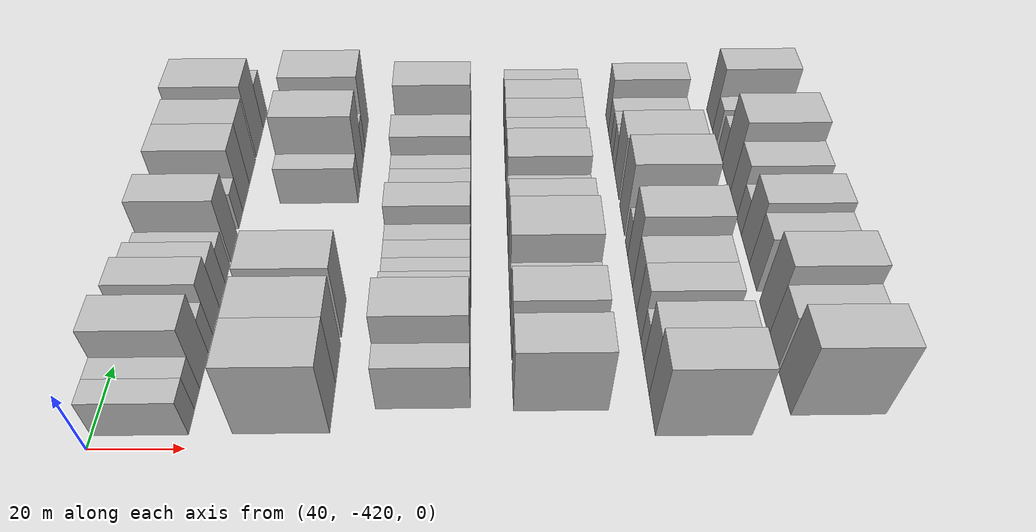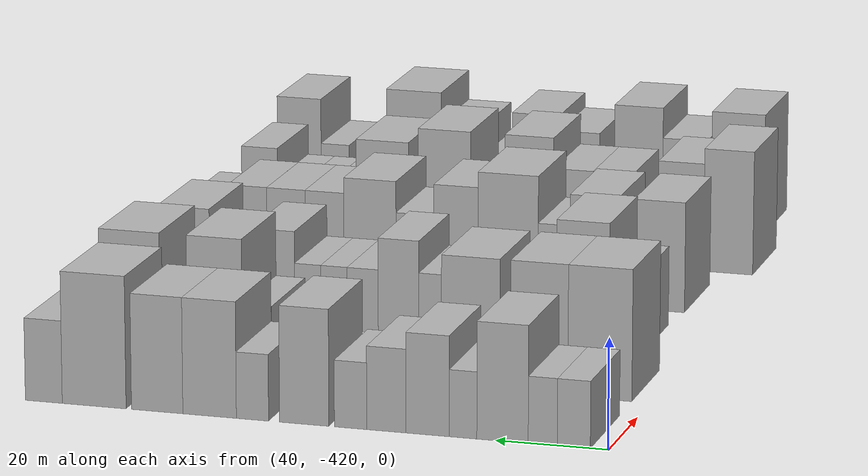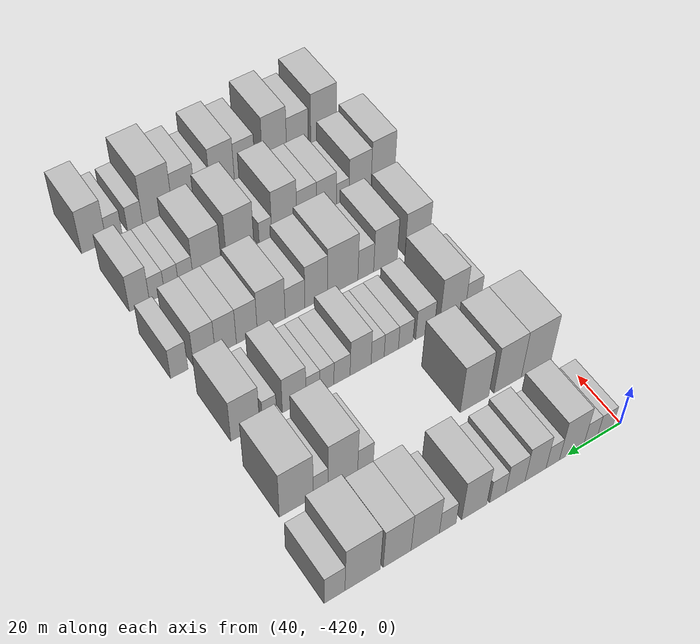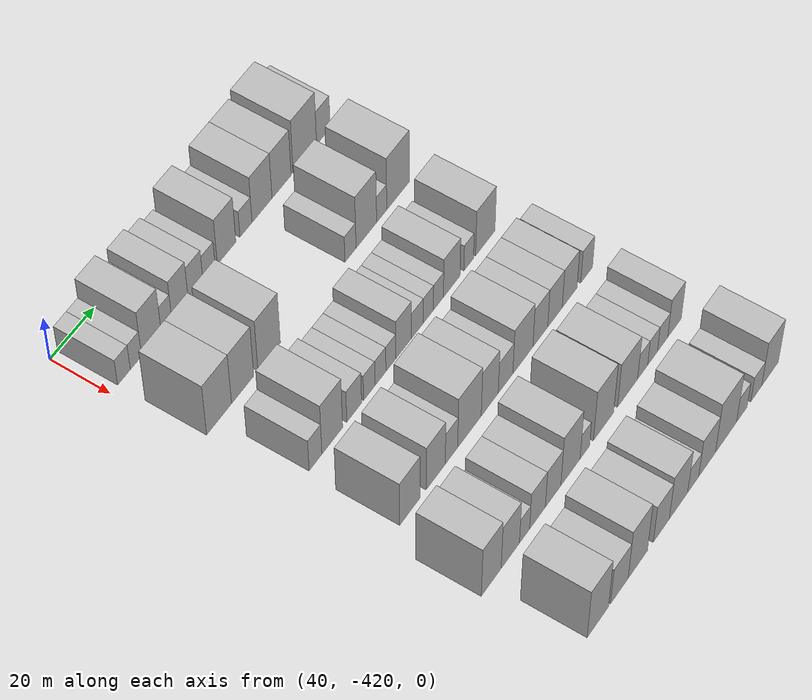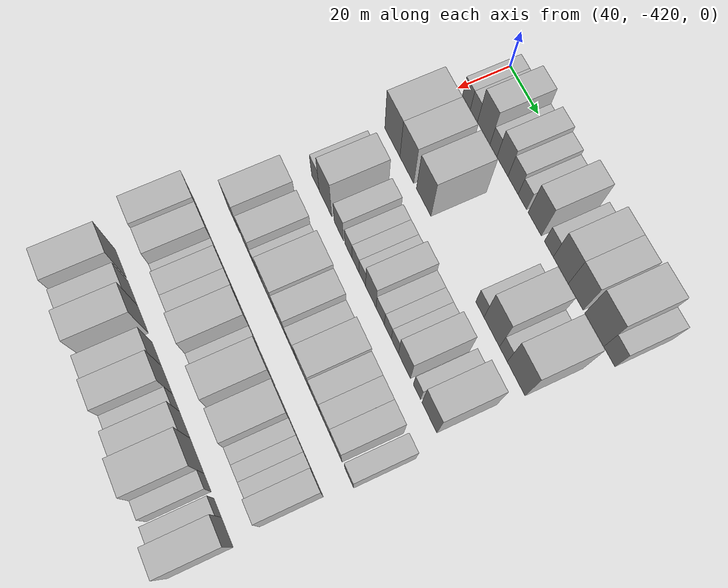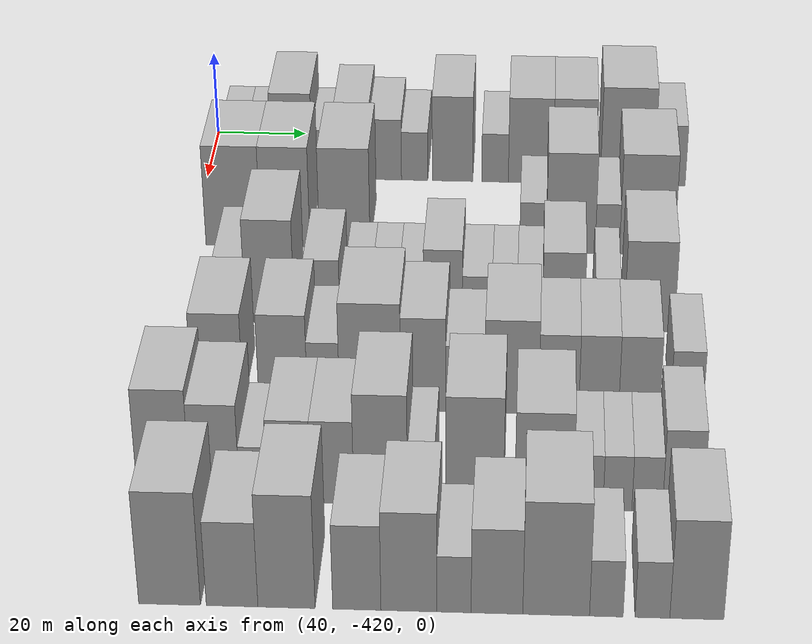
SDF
<sdf version="1.6">
 <world name="default">
  <model name="building_11">
   <static>1</static>
   <pose>50.0000 -413.8819 0 0.000000 0.000000 0.000000</pose>
   <link name="link">
    <pose>0 0 6.00 0 0 0</pose>
    <collision name="collision"><geometry><box><size>20.0000 5.8278 12.0000</size></box></geometry></collision>
    <visual name="visual">
     <cast_shadows>0</cast_shadows>
     <geometry><box><size>20.0000 5.8278 12.0000</size></box></geometry>
     <material>
      <script>
       <uri>model://HANNAS_wall/materials/scripts</uri>
       <uri>model://HANNAS_wall/materials/textures</uri>
       <name>vrc/HANNAS_wall</name>
      </script>
     </material>
    </visual>
   </link>
  </model>
  <model name="building_12">
   <static>1</static>
   <pose>50.0000 -408.3892 0 0.000000 0.000000 0.000000</pose>
   <link name="link">
    <pose>0 0 6.00 0 0 0</pose>
    <collision name="collision"><geometry><box><size>20.0000 5.1576 12.0000</size></box></geometry></collision>
    <visual name="visual">
     <cast_shadows>0</cast_shadows>
     <geometry><box><size>20.0000 5.1576 12.0000</size></box></geometry>
     <material>
      <script>
       <uri>model://HANNAS_wall/materials/scripts</uri>
       <uri>model://HANNAS_wall/materials/textures</uri>
       <name>vrc/HANNAS_wall</name>
      </script>
     </material>
    </visual>
   </link>
  </model>
  <model name="building_13">
   <static>1</static>
   <pose>50.0000 -401.2446 0 0.000000 0.000000 0.000000</pose>
   <link name="link">
    <pose>0 0 10.50 0 0 0</pose>
    <collision name="collision"><geometry><box><size>20.0000 9.1314 21.0000</size></box></geometry></collision>
    <visual name="visual">
     <cast_shadows>0</cast_shadows>
     <geometry><box><size>20.0000 9.1314 21.0000</size></box></geometry>
     <material>
      <script>
       <uri>model://HANNAS_wall/materials/scripts</uri>
       <uri>model://HANNAS_wall/materials/textures</uri>
       <name>vrc/HANNAS_wall</name>
      </script>
     </material>
    </visual>
   </link>
  </model>
  <model name="building_14">
   <static>1</static>
   <pose>50.0000 -394.2057 0 0.000000 0.000000 0.000000</pose>
   <link name="link">
    <pose>0 0 6.00 0 0 0</pose>
    <collision name="collision"><geometry><box><size>20.0000 4.9464 12.0000</size></box></geometry></collision>
    <visual name="visual">
     <cast_shadows>0</cast_shadows>
     <geometry><box><size>20.0000 4.9464 12.0000</size></box></geometry>
     <material>
      <script>
       <uri>model://HANNAS_wall/materials/scripts</uri>
       <uri>model://HANNAS_wall/materials/textures</uri>
       <name>vrc/HANNAS_wall</name>
      </script>
     </material>
    </visual>
   </link>
  </model>
  <model name="building_15">
   <static>1</static>
   <pose>50.0000 -387.8550 0 0.000000 0.000000 0.000000</pose>
   <link name="link">
    <pose>0 0 9.00 0 0 0</pose>
    <collision name="collision"><geometry><box><size>20.0000 7.7550 18.0000</size></box></geometry></collision>
    <visual name="visual">
     <cast_shadows>0</cast_shadows>
     <geometry><box><size>20.0000 7.7550 18.0000</size></box></geometry>
     <material>
      <script>
       <uri>model://HANNAS_wall/materials/scripts</uri>
       <uri>model://HANNAS_wall/materials/textures</uri>
       <name>vrc/HANNAS_wall</name>
      </script>
     </material>
    </visual>
   </link>
  </model>
  <model name="building_16">
   <static>1</static>
   <pose>50.0000 -380.4570 0 0.000000 0.000000 0.000000</pose>
   <link name="link">
    <pose>0 0 7.50 0 0 0</pose>
    <collision name="collision"><geometry><box><size>20.0000 7.0410 15.0000</size></box></geometry></collision>
    <visual name="visual">
     <cast_shadows>0</cast_shadows>
     <geometry><box><size>20.0000 7.0410 15.0000</size></box></geometry>
     <material>
      <script>
       <uri>model://HANNAS_wall/materials/scripts</uri>
       <uri>model://HANNAS_wall/materials/textures</uri>
       <name>vrc/HANNAS_wall</name>
      </script>
     </material>
    </visual>
   </link>
  </model>
  <model name="building_17">
   <static>1</static>
   <pose>50.0000 -374.0236 0 0.000000 0.000000 0.000000</pose>
   <link name="link">
    <pose>0 0 6.00 0 0 0</pose>
    <collision name="collision"><geometry><box><size>20.0000 5.8259 12.0000</size></box></geometry></collision>
    <visual name="visual">
     <cast_shadows>0</cast_shadows>
     <geometry><box><size>20.0000 5.8259 12.0000</size></box></geometry>
     <material>
      <script>
       <uri>model://HANNAS_wall/materials/scripts</uri>
       <uri>model://HANNAS_wall/materials/textures</uri>
       <name>vrc/HANNAS_wall</name>
      </script>
     </material>
    </visual>
   </link>
  </model>
  <model name="building_18">
   <static>1</static>
   <pose>50.0000 -365.6434 0 0.000000 0.000000 0.000000</pose>
   <link name="link">
    <pose>0 0 10.50 0 0 0</pose>
    <collision name="collision"><geometry><box><size>20.0000 8.9345 21.0000</size></box></geometry></collision>
    <visual name="visual">
     <cast_shadows>0</cast_shadows>
     <geometry><box><size>20.0000 8.9345 21.0000</size></box></geometry>
     <material>
      <script>
       <uri>model://HANNAS_wall/materials/scripts</uri>
       <uri>model://HANNAS_wall/materials/textures</uri>
       <name>vrc/HANNAS_wall</name>
      </script>
     </material>
    </visual>
   </link>
  </model>
  <model name="building_19">
   <static>1</static>
   <pose>50.0000 -356.2372 0 0.000000 0.000000 0.000000</pose>
   <link name="link">
    <pose>0 0 6.00 0 0 0</pose>
    <collision name="collision"><geometry><box><size>20.0000 5.8778 12.0000</size></box></geometry></collision>
    <visual name="visual">
     <cast_shadows>0</cast_shadows>
     <geometry><box><size>20.0000 5.8778 12.0000</size></box></geometry>
     <material>
      <script>
       <uri>model://HANNAS_wall/materials/scripts</uri>
       <uri>model://HANNAS_wall/materials/textures</uri>
       <name>vrc/HANNAS_wall</name>
      </script>
     </material>
    </visual>
   </link>
  </model>
  <model name="building_20">
   <static>1</static>
   <pose>50.0000 -348.4017 0 0.000000 0.000000 0.000000</pose>
   <link name="link">
    <pose>0 0 10.50 0 0 0</pose>
    <collision name="collision"><geometry><box><size>20.0000 9.7932 21.0000</size></box></geometry></collision>
    <visual name="visual">
     <cast_shadows>0</cast_shadows>
     <geometry><box><size>20.0000 9.7932 21.0000</size></box></geometry>
     <material>
      <script>
       <uri>model://HANNAS_wall/materials/scripts</uri>
       <uri>model://HANNAS_wall/materials/textures</uri>
       <name>vrc/HANNAS_wall</name>
      </script>
     </material>
    </visual>
   </link>
  </model>
  <model name="building_21">
   <static>1</static>
   <pose>50.0000 -338.7767 0 0.000000 0.000000 0.000000</pose>
   <link name="link">
    <pose>0 0 10.50 0 0 0</pose>
    <collision name="collision"><geometry><box><size>20.0000 9.4569 21.0000</size></box></geometry></collision>
    <visual name="visual">
     <cast_shadows>0</cast_shadows>
     <geometry><box><size>20.0000 9.4569 21.0000</size></box></geometry>
     <material>
      <script>
       <uri>model://HANNAS_wall/materials/scripts</uri>
       <uri>model://HANNAS_wall/materials/textures</uri>
       <name>vrc/HANNAS_wall</name>
      </script>
     </material>
    </visual>
   </link>
  </model>
  <model name="building_22">
   <static>1</static>
   <pose>50.0000 -327.1377 0 0.000000 0.000000 0.000000</pose>
   <link name="link">
    <pose>0 0 12.00 0 0 0</pose>
    <collision name="collision"><geometry><box><size>20.0000 11.8209 24.0000</size></box></geometry></collision>
    <visual name="visual">
     <cast_shadows>0</cast_shadows>
     <geometry><box><size>20.0000 11.8209 24.0000</size></box></geometry>
     <material>
      <script>
       <uri>model://HANNAS_wall/materials/scripts</uri>
       <uri>model://HANNAS_wall/materials/textures</uri>
       <name>vrc/HANNAS_wall</name>
      </script>
     </material>
    </visual>
   </link>
  </model>
  <model name="building_23">
   <static>1</static>
   <pose>50.0000 -317.7968 0 0.000000 0.000000 0.000000</pose>
   <link name="link">
    <pose>0 0 7.50 0 0 0</pose>
    <collision name="collision"><geometry><box><size>20.0000 6.8609 15.0000</size></box></geometry></collision>
    <visual name="visual">
     <cast_shadows>0</cast_shadows>
     <geometry><box><size>20.0000 6.8609 15.0000</size></box></geometry>
     <material>
      <script>
       <uri>model://HANNAS_wall/materials/scripts</uri>
       <uri>model://HANNAS_wall/materials/textures</uri>
       <name>vrc/HANNAS_wall</name>
      </script>
     </material>
    </visual>
   </link>
  </model>
  <model name="building_123">
   <static>1</static>
   <pose>79.0000 -410.8930 0 0.000000 0.000000 0.000000</pose>
   <link name="link">
    <pose>0 0 12.00 0 0 0</pose>
    <collision name="collision"><geometry><box><size>20.0000 11.6201 24.0000</size></box></geometry></collision>
    <visual name="visual">
     <cast_shadows>0</cast_shadows>
     <geometry><box><size>20.0000 11.6201 24.0000</size></box></geometry>
     <material>
      <script>
       <uri>model://HANNAS_wall/materials/scripts</uri>
       <uri>model://HANNAS_wall/materials/textures</uri>
       <name>vrc/HANNAS_wall</name>
      </script>
     </material>
    </visual>
   </link>
  </model>
  <model name="building_124">
   <static>1</static>
   <pose>79.0000 -399.8671 0 0.000000 0.000000 0.000000</pose>
   <link name="link">
    <pose>0 0 12.00 0 0 0</pose>
    <collision name="collision"><geometry><box><size>20.0000 10.4316 24.0000</size></box></geometry></collision>
    <visual name="visual">
     <cast_shadows>0</cast_shadows>
     <geometry><box><size>20.0000 10.4316 24.0000</size></box></geometry>
     <material>
      <script>
       <uri>model://HANNAS_wall/materials/scripts</uri>
       <uri>model://HANNAS_wall/materials/textures</uri>
       <name>vrc/HANNAS_wall</name>
      </script>
     </material>
    </visual>
   </link>
  </model>
  <model name="building_125">
   <static>1</static>
   <pose>79.0000 -387.3000 0 0.000000 0.000000 0.000000</pose>
   <link name="link">
    <pose>0 0 12.00 0 0 0</pose>
    <collision name="collision"><geometry><box><size>20.0000 10.7027 24.0000</size></box></geometry></collision>
    <visual name="visual">
     <cast_shadows>0</cast_shadows>
     <geometry><box><size>20.0000 10.7027 24.0000</size></box></geometry>
     <material>
      <script>
       <uri>model://HANNAS_wall/materials/scripts</uri>
       <uri>model://HANNAS_wall/materials/textures</uri>
       <name>vrc/HANNAS_wall</name>
      </script>
     </material>
    </visual>
   </link>
  </model>
  <model name="building_126">
   <static>1</static>
   <pose>79.0000 -347.6534 0 0.000000 0.000000 0.000000</pose>
   <link name="link">
    <pose>0 0 6.00 0 0 0</pose>
    <collision name="collision"><geometry><box><size>20.0000 5.5302 12.0000</size></box></geometry></collision>
    <visual name="visual">
     <cast_shadows>0</cast_shadows>
     <geometry><box><size>20.0000 5.5302 12.0000</size></box></geometry>
     <material>
      <script>
       <uri>model://HANNAS_wall/materials/scripts</uri>
       <uri>model://HANNAS_wall/materials/textures</uri>
       <name>vrc/HANNAS_wall</name>
      </script>
     </material>
    </visual>
   </link>
  </model>
  <model name="building_127">
   <static>1</static>
   <pose>79.0000 -339.7252 0 0.000000 0.000000 0.000000</pose>
   <link name="link">
    <pose>0 0 12.00 0 0 0</pose>
    <collision name="collision"><geometry><box><size>20.0000 10.3264 24.0000</size></box></geometry></collision>
    <visual name="visual">
     <cast_shadows>0</cast_shadows>
     <geometry><box><size>20.0000 10.3264 24.0000</size></box></geometry>
     <material>
      <script>
       <uri>model://HANNAS_wall/materials/scripts</uri>
       <uri>model://HANNAS_wall/materials/textures</uri>
       <name>vrc/HANNAS_wall</name>
      </script>
     </material>
    </visual>
   </link>
  </model>
  <model name="building_128">
   <static>1</static>
   <pose>79.0000 -332.0034 0 0.000000 0.000000 0.000000</pose>
   <link name="link">
    <pose>0 0 6.00 0 0 0</pose>
    <collision name="collision"><geometry><box><size>20.0000 5.1171 12.0000</size></box></geometry></collision>
    <visual name="visual">
     <cast_shadows>0</cast_shadows>
     <geometry><box><size>20.0000 5.1171 12.0000</size></box></geometry>
     <material>
      <script>
       <uri>model://HANNAS_wall/materials/scripts</uri>
       <uri>model://HANNAS_wall/materials/textures</uri>
       <name>vrc/HANNAS_wall</name>
      </script>
     </material>
    </visual>
   </link>
  </model>
  <model name="building_129">
   <static>1</static>
   <pose>79.0000 -323.7012 0 0.000000 0.000000 0.000000</pose>
   <link name="link">
    <pose>0 0 12.00 0 0 0</pose>
    <collision name="collision"><geometry><box><size>20.0000 11.4872 24.0000</size></box></geometry></collision>
    <visual name="visual">
     <cast_shadows>0</cast_shadows>
     <geometry><box><size>20.0000 11.4872 24.0000</size></box></geometry>
     <material>
      <script>
       <uri>model://HANNAS_wall/materials/scripts</uri>
       <uri>model://HANNAS_wall/materials/textures</uri>
       <name>vrc/HANNAS_wall</name>
      </script>
     </material>
    </visual>
   </link>
  </model>
  <model name="building_234">
   <static>1</static>
   <pose>108.0000 -408.1063 0 0.000000 0.000000 0.000000</pose>
   <link name="link">
    <pose>0 0 7.50 0 0 0</pose>
    <collision name="collision"><geometry><box><size>20.0000 6.0489 15.0000</size></box></geometry></collision>
    <visual name="visual">
     <cast_shadows>0</cast_shadows>
     <geometry><box><size>20.0000 6.0489 15.0000</size></box></geometry>
     <material>
      <script>
       <uri>model://HANNAS_wall/materials/scripts</uri>
       <uri>model://HANNAS_wall/materials/textures</uri>
       <name>vrc/HANNAS_wall</name>
      </script>
     </material>
    </visual>
   </link>
  </model>
  <model name="building_235">
   <static>1</static>
   <pose>108.0000 -400.1371 0 0.000000 0.000000 0.000000</pose>
   <link name="link">
    <pose>0 0 12.00 0 0 0</pose>
    <collision name="collision"><geometry><box><size>20.0000 9.8895 24.0000</size></box></geometry></collision>
    <visual name="visual">
     <cast_shadows>0</cast_shadows>
     <geometry><box><size>20.0000 9.8895 24.0000</size></box></geometry>
     <material>
      <script>
       <uri>model://HANNAS_wall/materials/scripts</uri>
       <uri>model://HANNAS_wall/materials/textures</uri>
       <name>vrc/HANNAS_wall</name>
      </script>
     </material>
    </visual>
   </link>
  </model>
  <model name="building_236">
   <static>1</static>
   <pose>108.0000 -389.6250 0 0.000000 0.000000 0.000000</pose>
   <link name="link">
    <pose>0 0 7.50 0 0 0</pose>
    <collision name="collision"><geometry><box><size>20.0000 7.1347 15.0000</size></box></geometry></collision>
    <visual name="visual">
     <cast_shadows>0</cast_shadows>
     <geometry><box><size>20.0000 7.1347 15.0000</size></box></geometry>
     <material>
      <script>
       <uri>model://HANNAS_wall/materials/scripts</uri>
       <uri>model://HANNAS_wall/materials/textures</uri>
       <name>vrc/HANNAS_wall</name>
      </script>
     </material>
    </visual>
   </link>
  </model>
  <model name="building_237">
   <static>1</static>
   <pose>108.0000 -382.2885 0 0.000000 0.000000 0.000000</pose>
   <link name="link">
    <pose>0 0 6.00 0 0 0</pose>
    <collision name="collision"><geometry><box><size>20.0000 5.5382 12.0000</size></box></geometry></collision>
    <visual name="visual">
     <cast_shadows>0</cast_shadows>
     <geometry><box><size>20.0000 5.5382 12.0000</size></box></geometry>
     <material>
      <script>
       <uri>model://HANNAS_wall/materials/scripts</uri>
       <uri>model://HANNAS_wall/materials/textures</uri>
       <name>vrc/HANNAS_wall</name>
      </script>
     </material>
    </visual>
   </link>
  </model>
  <model name="building_238">
   <static>1</static>
   <pose>108.0000 -376.8406 0 0.000000 0.000000 0.000000</pose>
   <link name="link">
    <pose>0 0 6.00 0 0 0</pose>
    <collision name="collision"><geometry><box><size>20.0000 5.3577 12.0000</size></box></geometry></collision>
    <visual name="visual">
     <cast_shadows>0</cast_shadows>
     <geometry><box><size>20.0000 5.3577 12.0000</size></box></geometry>
     <material>
      <script>
       <uri>model://HANNAS_wall/materials/scripts</uri>
       <uri>model://HANNAS_wall/materials/textures</uri>
       <name>vrc/HANNAS_wall</name>
      </script>
     </material>
    </visual>
   </link>
  </model>
  <model name="building_239">
   <static>1</static>
   <pose>108.0000 -371.7180 0 0.000000 0.000000 0.000000</pose>
   <link name="link">
    <pose>0 0 6.00 0 0 0</pose>
    <collision name="collision"><geometry><box><size>20.0000 4.8873 12.0000</size></box></geometry></collision>
    <visual name="visual">
     <cast_shadows>0</cast_shadows>
     <geometry><box><size>20.0000 4.8873 12.0000</size></box></geometry>
     <material>
      <script>
       <uri>model://HANNAS_wall/materials/scripts</uri>
       <uri>model://HANNAS_wall/materials/textures</uri>
       <name>vrc/HANNAS_wall</name>
      </script>
     </material>
    </visual>
   </link>
  </model>
  <model name="building_240">
   <static>1</static>
   <pose>108.0000 -365.4017 0 0.000000 0.000000 0.000000</pose>
   <link name="link">
    <pose>0 0 9.00 0 0 0</pose>
    <collision name="collision"><geometry><box><size>20.0000 7.7454 18.0000</size></box></geometry></collision>
    <visual name="visual">
     <cast_shadows>0</cast_shadows>
     <geometry><box><size>20.0000 7.7454 18.0000</size></box></geometry>
     <material>
      <script>
       <uri>model://HANNAS_wall/materials/scripts</uri>
       <uri>model://HANNAS_wall/materials/textures</uri>
       <name>vrc/HANNAS_wall</name>
      </script>
     </material>
    </visual>
   </link>
  </model>
  <model name="building_241">
   <static>1</static>
   <pose>108.0000 -358.5726 0 0.000000 0.000000 0.000000</pose>
   <link name="link">
    <pose>0 0 6.00 0 0 0</pose>
    <collision name="collision"><geometry><box><size>20.0000 5.9128 12.0000</size></box></geometry></collision>
    <visual name="visual">
     <cast_shadows>0</cast_shadows>
     <geometry><box><size>20.0000 5.9128 12.0000</size></box></geometry>
     <material>
      <script>
       <uri>model://HANNAS_wall/materials/scripts</uri>
       <uri>model://HANNAS_wall/materials/textures</uri>
       <name>vrc/HANNAS_wall</name>
      </script>
     </material>
    </visual>
   </link>
  </model>
  <model name="building_242">
   <static>1</static>
   <pose>108.0000 -353.1032 0 0.000000 0.000000 0.000000</pose>
   <link name="link">
    <pose>0 0 6.00 0 0 0</pose>
    <collision name="collision"><geometry><box><size>20.0000 5.0260 12.0000</size></box></geometry></collision>
    <visual name="visual">
     <cast_shadows>0</cast_shadows>
     <geometry><box><size>20.0000 5.0260 12.0000</size></box></geometry>
     <material>
      <script>
       <uri>model://HANNAS_wall/materials/scripts</uri>
       <uri>model://HANNAS_wall/materials/textures</uri>
       <name>vrc/HANNAS_wall</name>
      </script>
     </material>
    </visual>
   </link>
  </model>
  <model name="building_243">
   <static>1</static>
   <pose>108.0000 -348.0610 0 0.000000 0.000000 0.000000</pose>
   <link name="link">
    <pose>0 0 6.00 0 0 0</pose>
    <collision name="collision"><geometry><box><size>20.0000 5.0583 12.0000</size></box></geometry></collision>
    <visual name="visual">
     <cast_shadows>0</cast_shadows>
     <geometry><box><size>20.0000 5.0583 12.0000</size></box></geometry>
     <material>
      <script>
       <uri>model://HANNAS_wall/materials/scripts</uri>
       <uri>model://HANNAS_wall/materials/textures</uri>
       <name>vrc/HANNAS_wall</name>
      </script>
     </material>
    </visual>
   </link>
  </model>
  <model name="building_244">
   <static>1</static>
   <pose>108.0000 -341.3216 0 0.000000 0.000000 0.000000</pose>
   <link name="link">
    <pose>0 0 9.00 0 0 0</pose>
    <collision name="collision"><geometry><box><size>20.0000 8.4205 18.0000</size></box></geometry></collision>
    <visual name="visual">
     <cast_shadows>0</cast_shadows>
     <geometry><box><size>20.0000 8.4205 18.0000</size></box></geometry>
     <material>
      <script>
       <uri>model://HANNAS_wall/materials/scripts</uri>
       <uri>model://HANNAS_wall/materials/textures</uri>
       <name>vrc/HANNAS_wall</name>
      </script>
     </material>
    </visual>
   </link>
  </model>
  <model name="building_245">
   <static>1</static>
   <pose>108.0000 -332.6298 0 0.000000 0.000000 0.000000</pose>
   <link name="link">
    <pose>0 0 6.00 0 0 0</pose>
    <collision name="collision"><geometry><box><size>20.0000 4.9632 12.0000</size></box></geometry></collision>
    <visual name="visual">
     <cast_shadows>0</cast_shadows>
     <geometry><box><size>20.0000 4.9632 12.0000</size></box></geometry>
     <material>
      <script>
       <uri>model://HANNAS_wall/materials/scripts</uri>
       <uri>model://HANNAS_wall/materials/textures</uri>
       <name>vrc/HANNAS_wall</name>
      </script>
     </material>
    </visual>
   </link>
  </model>
  <model name="building_246">
   <static>1</static>
   <pose>108.0000 -324.1349 0 0.000000 0.000000 0.000000</pose>
   <link name="link">
    <pose>0 0 10.50 0 0 0</pose>
    <collision name="collision"><geometry><box><size>20.0000 10.0266 21.0000</size></box></geometry></collision>
    <visual name="visual">
     <cast_shadows>0</cast_shadows>
     <geometry><box><size>20.0000 10.0266 21.0000</size></box></geometry>
     <material>
      <script>
       <uri>model://HANNAS_wall/materials/scripts</uri>
       <uri>model://HANNAS_wall/materials/textures</uri>
       <name>vrc/HANNAS_wall</name>
      </script>
     </material>
    </visual>
   </link>
  </model>
  <model name="building_355">
   <static>1</static>
   <pose>137.0000 -407.1047 0 0.000000 0.000000 0.000000</pose>
   <link name="link">
    <pose>0 0 10.50 0 0 0</pose>
    <collision name="collision"><geometry><box><size>20.0000 9.7411 21.0000</size></box></geometry></collision>
    <visual name="visual">
     <cast_shadows>0</cast_shadows>
     <geometry><box><size>20.0000 9.7411 21.0000</size></box></geometry>
     <material>
      <script>
       <uri>model://HANNAS_wall/materials/scripts</uri>
       <uri>model://HANNAS_wall/materials/textures</uri>
       <name>vrc/HANNAS_wall</name>
      </script>
     </material>
    </visual>
   </link>
  </model>
  <model name="building_356">
   <static>1</static>
   <pose>137.0000 -394.6013 0 0.000000 0.000000 0.000000</pose>
   <link name="link">
    <pose>0 0 10.50 0 0 0</pose>
    <collision name="collision"><geometry><box><size>20.0000 9.2657 21.0000</size></box></geometry></collision>
    <visual name="visual">
     <cast_shadows>0</cast_shadows>
     <geometry><box><size>20.0000 9.2657 21.0000</size></box></geometry>
     <material>
      <script>
       <uri>model://HANNAS_wall/materials/scripts</uri>
       <uri>model://HANNAS_wall/materials/textures</uri>
       <name>vrc/HANNAS_wall</name>
      </script>
     </material>
    </visual>
   </link>
  </model>
  <model name="building_357">
   <static>1</static>
   <pose>137.0000 -386.9187 0 0.000000 0.000000 0.000000</pose>
   <link name="link">
    <pose>0 0 7.50 0 0 0</pose>
    <collision name="collision"><geometry><box><size>20.0000 6.0995 15.0000</size></box></geometry></collision>
    <visual name="visual">
     <cast_shadows>0</cast_shadows>
     <geometry><box><size>20.0000 6.0995 15.0000</size></box></geometry>
     <material>
      <script>
       <uri>model://HANNAS_wall/materials/scripts</uri>
       <uri>model://HANNAS_wall/materials/textures</uri>
       <name>vrc/HANNAS_wall</name>
      </script>
     </material>
    </visual>
   </link>
  </model>
  <model name="building_358">
   <static>1</static>
   <pose>137.0000 -378.0442 0 0.000000 0.000000 0.000000</pose>
   <link name="link">
    <pose>0 0 12.00 0 0 0</pose>
    <collision name="collision"><geometry><box><size>20.0000 11.6493 24.0000</size></box></geometry></collision>
    <visual name="visual">
     <cast_shadows>0</cast_shadows>
     <geometry><box><size>20.0000 11.6493 24.0000</size></box></geometry>
     <material>
      <script>
       <uri>model://HANNAS_wall/materials/scripts</uri>
       <uri>model://HANNAS_wall/materials/textures</uri>
       <name>vrc/HANNAS_wall</name>
      </script>
     </material>
    </visual>
   </link>
  </model>
  <model name="building_359">
   <static>1</static>
   <pose>137.0000 -367.9452 0 0.000000 0.000000 0.000000</pose>
   <link name="link">
    <pose>0 0 10.50 0 0 0</pose>
    <collision name="collision"><geometry><box><size>20.0000 8.5488 21.0000</size></box></geometry></collision>
    <visual name="visual">
     <cast_shadows>0</cast_shadows>
     <geometry><box><size>20.0000 8.5488 21.0000</size></box></geometry>
     <material>
      <script>
       <uri>model://HANNAS_wall/materials/scripts</uri>
       <uri>model://HANNAS_wall/materials/textures</uri>
       <name>vrc/HANNAS_wall</name>
      </script>
     </material>
    </visual>
   </link>
  </model>
  <model name="building_360">
   <static>1</static>
   <pose>137.0000 -359.9705 0 0.000000 0.000000 0.000000</pose>
   <link name="link">
    <pose>0 0 7.50 0 0 0</pose>
    <collision name="collision"><geometry><box><size>20.0000 7.4006 15.0000</size></box></geometry></collision>
    <visual name="visual">
     <cast_shadows>0</cast_shadows>
     <geometry><box><size>20.0000 7.4006 15.0000</size></box></geometry>
     <material>
      <script>
       <uri>model://HANNAS_wall/materials/scripts</uri>
       <uri>model://HANNAS_wall/materials/textures</uri>
       <name>vrc/HANNAS_wall</name>
      </script>
     </material>
    </visual>
   </link>
  </model>
  <model name="building_361">
   <static>1</static>
   <pose>137.0000 -351.1502 0 0.000000 0.000000 0.000000</pose>
   <link name="link">
    <pose>0 0 10.50 0 0 0</pose>
    <collision name="collision"><geometry><box><size>20.0000 10.2399 21.0000</size></box></geometry></collision>
    <visual name="visual">
     <cast_shadows>0</cast_shadows>
     <geometry><box><size>20.0000 10.2399 21.0000</size></box></geometry>
     <material>
      <script>
       <uri>model://HANNAS_wall/materials/scripts</uri>
       <uri>model://HANNAS_wall/materials/textures</uri>
       <name>vrc/HANNAS_wall</name>
      </script>
     </material>
    </visual>
   </link>
  </model>
  <model name="building_362">
   <static>1</static>
   <pose>137.0000 -342.2276 0 0.000000 0.000000 0.000000</pose>
   <link name="link">
    <pose>0 0 9.00 0 0 0</pose>
    <collision name="collision"><geometry><box><size>20.0000 7.6053 18.0000</size></box></geometry></collision>
    <visual name="visual">
     <cast_shadows>0</cast_shadows>
     <geometry><box><size>20.0000 7.6053 18.0000</size></box></geometry>
     <material>
      <script>
       <uri>model://HANNAS_wall/materials/scripts</uri>
       <uri>model://HANNAS_wall/materials/textures</uri>
       <name>vrc/HANNAS_wall</name>
      </script>
     </material>
    </visual>
   </link>
  </model>
  <model name="building_363">
   <static>1</static>
   <pose>137.0000 -334.6523 0 0.000000 0.000000 0.000000</pose>
   <link name="link">
    <pose>0 0 9.00 0 0 0</pose>
    <collision name="collision"><geometry><box><size>20.0000 7.5453 18.0000</size></box></geometry></collision>
    <visual name="visual">
     <cast_shadows>0</cast_shadows>
     <geometry><box><size>20.0000 7.5453 18.0000</size></box></geometry>
     <material>
      <script>
       <uri>model://HANNAS_wall/materials/scripts</uri>
       <uri>model://HANNAS_wall/materials/textures</uri>
       <name>vrc/HANNAS_wall</name>
      </script>
     </material>
    </visual>
   </link>
  </model>
  <model name="building_364">
   <static>1</static>
   <pose>137.0000 -327.0043 0 0.000000 0.000000 0.000000</pose>
   <link name="link">
    <pose>0 0 9.00 0 0 0</pose>
    <collision name="collision"><geometry><box><size>20.0000 7.7505 18.0000</size></box></geometry></collision>
    <visual name="visual">
     <cast_shadows>0</cast_shadows>
     <geometry><box><size>20.0000 7.7505 18.0000</size></box></geometry>
     <material>
      <script>
       <uri>model://HANNAS_wall/materials/scripts</uri>
       <uri>model://HANNAS_wall/materials/textures</uri>
       <name>vrc/HANNAS_wall</name>
      </script>
     </material>
    </visual>
   </link>
  </model>
  <model name="building_365">
   <static>1</static>
   <pose>137.0000 -318.0455 0 0.000000 0.000000 0.000000</pose>
   <link name="link">
    <pose>0 0 7.50 0 0 0</pose>
    <collision name="collision"><geometry><box><size>20.0000 6.1672 15.0000</size></box></geometry></collision>
    <visual name="visual">
     <cast_shadows>0</cast_shadows>
     <geometry><box><size>20.0000 6.1672 15.0000</size></box></geometry>
     <material>
      <script>
       <uri>model://HANNAS_wall/materials/scripts</uri>
       <uri>model://HANNAS_wall/materials/textures</uri>
       <name>vrc/HANNAS_wall</name>
      </script>
     </material>
    </visual>
   </link>
  </model>
  <model name="building_464">
   <static>1</static>
   <pose>166.0000 -413.3546 0 0.000000 0.000000 0.000000</pose>
   <link name="link">
    <pose>0 0 12.00 0 0 0</pose>
    <collision name="collision"><geometry><box><size>20.0000 9.6072 24.0000</size></box></geometry></collision>
    <visual name="visual">
     <cast_shadows>0</cast_shadows>
     <geometry><box><size>20.0000 9.6072 24.0000</size></box></geometry>
     <material>
      <script>
       <uri>model://HANNAS_wall/materials/scripts</uri>
       <uri>model://HANNAS_wall/materials/textures</uri>
       <name>vrc/HANNAS_wall</name>
      </script>
     </material>
    </visual>
   </link>
  </model>
  <model name="building_465">
   <static>1</static>
   <pose>166.0000 -404.0893 0 0.000000 0.000000 0.000000</pose>
   <link name="link">
    <pose>0 0 10.50 0 0 0</pose>
    <collision name="collision"><geometry><box><size>20.0000 8.9235 21.0000</size></box></geometry></collision>
    <visual name="visual">
     <cast_shadows>0</cast_shadows>
     <geometry><box><size>20.0000 8.9235 21.0000</size></box></geometry>
     <material>
      <script>
       <uri>model://HANNAS_wall/materials/scripts</uri>
       <uri>model://HANNAS_wall/materials/textures</uri>
       <name>vrc/HANNAS_wall</name>
      </script>
     </material>
    </visual>
   </link>
  </model>
  <model name="building_466">
   <static>1</static>
   <pose>166.0000 -397.1338 0 0.000000 0.000000 0.000000</pose>
   <link name="link">
    <pose>0 0 6.00 0 0 0</pose>
    <collision name="collision"><geometry><box><size>20.0000 4.9875 12.0000</size></box></geometry></collision>
    <visual name="visual">
     <cast_shadows>0</cast_shadows>
     <geometry><box><size>20.0000 4.9875 12.0000</size></box></geometry>
     <material>
      <script>
       <uri>model://HANNAS_wall/materials/scripts</uri>
       <uri>model://HANNAS_wall/materials/textures</uri>
       <name>vrc/HANNAS_wall</name>
      </script>
     </material>
    </visual>
   </link>
  </model>
  <model name="building_467">
   <static>1</static>
   <pose>166.0000 -390.7152 0 0.000000 0.000000 0.000000</pose>
   <link name="link">
    <pose>0 0 9.00 0 0 0</pose>
    <collision name="collision"><geometry><box><size>20.0000 7.8498 18.0000</size></box></geometry></collision>
    <visual name="visual">
     <cast_shadows>0</cast_shadows>
     <geometry><box><size>20.0000 7.8498 18.0000</size></box></geometry>
     <material>
      <script>
       <uri>model://HANNAS_wall/materials/scripts</uri>
       <uri>model://HANNAS_wall/materials/textures</uri>
       <name>vrc/HANNAS_wall</name>
      </script>
     </material>
    </visual>
   </link>
  </model>
  <model name="building_468">
   <static>1</static>
   <pose>166.0000 -382.9096 0 0.000000 0.000000 0.000000</pose>
   <link name="link">
    <pose>0 0 9.00 0 0 0</pose>
    <collision name="collision"><geometry><box><size>20.0000 7.7613 18.0000</size></box></geometry></collision>
    <visual name="visual">
     <cast_shadows>0</cast_shadows>
     <geometry><box><size>20.0000 7.7613 18.0000</size></box></geometry>
     <material>
      <script>
       <uri>model://HANNAS_wall/materials/scripts</uri>
       <uri>model://HANNAS_wall/materials/textures</uri>
       <name>vrc/HANNAS_wall</name>
      </script>
     </material>
    </visual>
   </link>
  </model>
  <model name="building_469">
   <static>1</static>
   <pose>166.0000 -374.1954 0 0.000000 0.000000 0.000000</pose>
   <link name="link">
    <pose>0 0 12.00 0 0 0</pose>
    <collision name="collision"><geometry><box><size>20.0000 9.6670 24.0000</size></box></geometry></collision>
    <visual name="visual">
     <cast_shadows>0</cast_shadows>
     <geometry><box><size>20.0000 9.6670 24.0000</size></box></geometry>
     <material>
      <script>
       <uri>model://HANNAS_wall/materials/scripts</uri>
       <uri>model://HANNAS_wall/materials/textures</uri>
       <name>vrc/HANNAS_wall</name>
      </script>
     </material>
    </visual>
   </link>
  </model>
  <model name="building_470">
   <static>1</static>
   <pose>166.0000 -366.9362 0 0.000000 0.000000 0.000000</pose>
   <link name="link">
    <pose>0 0 6.00 0 0 0</pose>
    <collision name="collision"><geometry><box><size>20.0000 4.8515 12.0000</size></box></geometry></collision>
    <visual name="visual">
     <cast_shadows>0</cast_shadows>
     <geometry><box><size>20.0000 4.8515 12.0000</size></box></geometry>
     <material>
      <script>
       <uri>model://HANNAS_wall/materials/scripts</uri>
       <uri>model://HANNAS_wall/materials/textures</uri>
       <name>vrc/HANNAS_wall</name>
      </script>
     </material>
    </visual>
   </link>
  </model>
  <model name="building_471">
   <static>1</static>
   <pose>166.0000 -357.3052 0 0.000000 0.000000 0.000000</pose>
   <link name="link">
    <pose>0 0 12.00 0 0 0</pose>
    <collision name="collision"><geometry><box><size>20.0000 10.4104 24.0000</size></box></geometry></collision>
    <visual name="visual">
     <cast_shadows>0</cast_shadows>
     <geometry><box><size>20.0000 10.4104 24.0000</size></box></geometry>
     <material>
      <script>
       <uri>model://HANNAS_wall/materials/scripts</uri>
       <uri>model://HANNAS_wall/materials/textures</uri>
       <name>vrc/HANNAS_wall</name>
      </script>
     </material>
    </visual>
   </link>
  </model>
  <model name="building_472">
   <static>1</static>
   <pose>166.0000 -344.8645 0 0.000000 0.000000 0.000000</pose>
   <link name="link">
    <pose>0 0 10.50 0 0 0</pose>
    <collision name="collision"><geometry><box><size>20.0000 10.4710 21.0000</size></box></geometry></collision>
    <visual name="visual">
     <cast_shadows>0</cast_shadows>
     <geometry><box><size>20.0000 10.4710 21.0000</size></box></geometry>
     <material>
      <script>
       <uri>model://HANNAS_wall/materials/scripts</uri>
       <uri>model://HANNAS_wall/materials/textures</uri>
       <name>vrc/HANNAS_wall</name>
      </script>
     </material>
    </visual>
   </link>
  </model>
  <model name="building_473">
   <static>1</static>
   <pose>166.0000 -336.9549 0 0.000000 0.000000 0.000000</pose>
   <link name="link">
    <pose>0 0 6.00 0 0 0</pose>
    <collision name="collision"><geometry><box><size>20.0000 5.3481 12.0000</size></box></geometry></collision>
    <visual name="visual">
     <cast_shadows>0</cast_shadows>
     <geometry><box><size>20.0000 5.3481 12.0000</size></box></geometry>
     <material>
      <script>
       <uri>model://HANNAS_wall/materials/scripts</uri>
       <uri>model://HANNAS_wall/materials/textures</uri>
       <name>vrc/HANNAS_wall</name>
      </script>
     </material>
    </visual>
   </link>
  </model>
  <model name="building_474">
   <static>1</static>
   <pose>166.0000 -331.6908 0 0.000000 0.000000 0.000000</pose>
   <link name="link">
    <pose>0 0 6.00 0 0 0</pose>
    <collision name="collision"><geometry><box><size>20.0000 5.1801 12.0000</size></box></geometry></collision>
    <visual name="visual">
     <cast_shadows>0</cast_shadows>
     <geometry><box><size>20.0000 5.1801 12.0000</size></box></geometry>
     <material>
      <script>
       <uri>model://HANNAS_wall/materials/scripts</uri>
       <uri>model://HANNAS_wall/materials/textures</uri>
       <name>vrc/HANNAS_wall</name>
      </script>
     </material>
    </visual>
   </link>
  </model>
  <model name="building_475">
   <static>1</static>
   <pose>166.0000 -326.3680 0 0.000000 0.000000 0.000000</pose>
   <link name="link">
    <pose>0 0 6.00 0 0 0</pose>
    <collision name="collision"><geometry><box><size>20.0000 5.4656 12.0000</size></box></geometry></collision>
    <visual name="visual">
     <cast_shadows>0</cast_shadows>
     <geometry><box><size>20.0000 5.4656 12.0000</size></box></geometry>
     <material>
      <script>
       <uri>model://HANNAS_wall/materials/scripts</uri>
       <uri>model://HANNAS_wall/materials/textures</uri>
       <name>vrc/HANNAS_wall</name>
      </script>
     </material>
    </visual>
   </link>
  </model>
  <model name="building_476">
   <static>1</static>
   <pose>166.0000 -320.0134 0 0.000000 0.000000 0.000000</pose>
   <link name="link">
    <pose>0 0 9.00 0 0 0</pose>
    <collision name="collision"><geometry><box><size>20.0000 7.2435 18.0000</size></box></geometry></collision>
    <visual name="visual">
     <cast_shadows>0</cast_shadows>
     <geometry><box><size>20.0000 7.2435 18.0000</size></box></geometry>
     <material>
      <script>
       <uri>model://HANNAS_wall/materials/scripts</uri>
       <uri>model://HANNAS_wall/materials/textures</uri>
       <name>vrc/HANNAS_wall</name>
      </script>
     </material>
    </visual>
   </link>
  </model>
  <model name="building_584">
   <static>1</static>
   <pose>195.0000 -408.3487 0 0.000000 0.000000 0.000000</pose>
   <link name="link">
    <pose>0 0 12.00 0 0 0</pose>
    <collision name="collision"><geometry><box><size>20.0000 10.5527 24.0000</size></box></geometry></collision>
    <visual name="visual">
     <cast_shadows>0</cast_shadows>
     <geometry><box><size>20.0000 10.5527 24.0000</size></box></geometry>
     <material>
      <script>
       <uri>model://HANNAS_wall/materials/scripts</uri>
       <uri>model://HANNAS_wall/materials/textures</uri>
       <name>vrc/HANNAS_wall</name>
      </script>
     </material>
    </visual>
   </link>
  </model>
  <model name="building_585">
   <static>1</static>
   <pose>195.0000 -397.6666 0 0.000000 0.000000 0.000000</pose>
   <link name="link">
    <pose>0 0 9.00 0 0 0</pose>
    <collision name="collision"><geometry><box><size>20.0000 8.8115 18.0000</size></box></geometry></collision>
    <visual name="visual">
     <cast_shadows>0</cast_shadows>
     <geometry><box><size>20.0000 8.8115 18.0000</size></box></geometry>
     <material>
      <script>
       <uri>model://HANNAS_wall/materials/scripts</uri>
       <uri>model://HANNAS_wall/materials/textures</uri>
       <name>vrc/HANNAS_wall</name>
      </script>
     </material>
    </visual>
   </link>
  </model>
  <model name="building_586">
   <static>1</static>
   <pose>195.0000 -388.3929 0 0.000000 0.000000 0.000000</pose>
   <link name="link">
    <pose>0 0 12.00 0 0 0</pose>
    <collision name="collision"><geometry><box><size>20.0000 9.7361 24.0000</size></box></geometry></collision>
    <visual name="visual">
     <cast_shadows>0</cast_shadows>
     <geometry><box><size>20.0000 9.7361 24.0000</size></box></geometry>
     <material>
      <script>
       <uri>model://HANNAS_wall/materials/scripts</uri>
       <uri>model://HANNAS_wall/materials/textures</uri>
       <name>vrc/HANNAS_wall</name>
      </script>
     </material>
    </visual>
   </link>
  </model>
  <model name="building_587">
   <static>1</static>
   <pose>195.0000 -376.4220 0 0.000000 0.000000 0.000000</pose>
   <link name="link">
    <pose>0 0 9.00 0 0 0</pose>
    <collision name="collision"><geometry><box><size>20.0000 8.2056 18.0000</size></box></geometry></collision>
    <visual name="visual">
     <cast_shadows>0</cast_shadows>
     <geometry><box><size>20.0000 8.2056 18.0000</size></box></geometry>
     <material>
      <script>
       <uri>model://HANNAS_wall/materials/scripts</uri>
       <uri>model://HANNAS_wall/materials/textures</uri>
       <name>vrc/HANNAS_wall</name>
      </script>
     </material>
    </visual>
   </link>
  </model>
  <model name="building_588">
   <static>1</static>
   <pose>195.0000 -367.5670 0 0.000000 0.000000 0.000000</pose>
   <link name="link">
    <pose>0 0 10.50 0 0 0</pose>
    <collision name="collision"><geometry><box><size>20.0000 9.5044 21.0000</size></box></geometry></collision>
    <visual name="visual">
     <cast_shadows>0</cast_shadows>
     <geometry><box><size>20.0000 9.5044 21.0000</size></box></geometry>
     <material>
      <script>
       <uri>model://HANNAS_wall/materials/scripts</uri>
       <uri>model://HANNAS_wall/materials/textures</uri>
       <name>vrc/HANNAS_wall</name>
      </script>
     </material>
    </visual>
   </link>
  </model>
  <model name="building_589">
   <static>1</static>
   <pose>195.0000 -359.9201 0 0.000000 0.000000 0.000000</pose>
   <link name="link">
    <pose>0 0 6.00 0 0 0</pose>
    <collision name="collision"><geometry><box><size>20.0000 5.7894 12.0000</size></box></geometry></collision>
    <visual name="visual">
     <cast_shadows>0</cast_shadows>
     <geometry><box><size>20.0000 5.7894 12.0000</size></box></geometry>
     <material>
      <script>
       <uri>model://HANNAS_wall/materials/scripts</uri>
       <uri>model://HANNAS_wall/materials/textures</uri>
       <name>vrc/HANNAS_wall</name>
      </script>
     </material>
    </visual>
   </link>
  </model>
  <model name="building_590">
   <static>1</static>
   <pose>195.0000 -352.6447 0 0.000000 0.000000 0.000000</pose>
   <link name="link">
    <pose>0 0 9.00 0 0 0</pose>
    <collision name="collision"><geometry><box><size>20.0000 8.7615 18.0000</size></box></geometry></collision>
    <visual name="visual">
     <cast_shadows>0</cast_shadows>
     <geometry><box><size>20.0000 8.7615 18.0000</size></box></geometry>
     <material>
      <script>
       <uri>model://HANNAS_wall/materials/scripts</uri>
       <uri>model://HANNAS_wall/materials/textures</uri>
       <name>vrc/HANNAS_wall</name>
      </script>
     </material>
    </visual>
   </link>
  </model>
  <model name="building_591">
   <static>1</static>
   <pose>195.0000 -342.6287 0 0.000000 0.000000 0.000000</pose>
   <link name="link">
    <pose>0 0 12.00 0 0 0</pose>
    <collision name="collision"><geometry><box><size>20.0000 11.2705 24.0000</size></box></geometry></collision>
    <visual name="visual">
     <cast_shadows>0</cast_shadows>
     <geometry><box><size>20.0000 11.2705 24.0000</size></box></geometry>
     <material>
      <script>
       <uri>model://HANNAS_wall/materials/scripts</uri>
       <uri>model://HANNAS_wall/materials/textures</uri>
       <name>vrc/HANNAS_wall</name>
      </script>
     </material>
    </visual>
   </link>
  </model>
  <model name="building_592">
   <static>1</static>
   <pose>195.0000 -334.1516 0 0.000000 0.000000 0.000000</pose>
   <link name="link">
    <pose>0 0 6.00 0 0 0</pose>
    <collision name="collision"><geometry><box><size>20.0000 5.6837 12.0000</size></box></geometry></collision>
    <visual name="visual">
     <cast_shadows>0</cast_shadows>
     <geometry><box><size>20.0000 5.6837 12.0000</size></box></geometry>
     <material>
      <script>
       <uri>model://HANNAS_wall/materials/scripts</uri>
       <uri>model://HANNAS_wall/materials/textures</uri>
       <name>vrc/HANNAS_wall</name>
      </script>
     </material>
    </visual>
   </link>
  </model>
  <model name="building_593">
   <static>1</static>
   <pose>195.0000 -326.3768 0 0.000000 0.000000 0.000000</pose>
   <link name="link">
    <pose>0 0 6.00 0 0 0</pose>
    <collision name="collision"><geometry><box><size>20.0000 5.8660 12.0000</size></box></geometry></collision>
    <visual name="visual">
     <cast_shadows>0</cast_shadows>
     <geometry><box><size>20.0000 5.8660 12.0000</size></box></geometry>
     <material>
      <script>
       <uri>model://HANNAS_wall/materials/scripts</uri>
       <uri>model://HANNAS_wall/materials/textures</uri>
       <name>vrc/HANNAS_wall</name>
      </script>
     </material>
    </visual>
   </link>
  </model>
  <model name="building_594">
   <static>1</static>
   <pose>195.0000 -318.8942 0 0.000000 0.000000 0.000000</pose>
   <link name="link">
    <pose>0 0 10.50 0 0 0</pose>
    <collision name="collision"><geometry><box><size>20.0000 9.0991 21.0000</size></box></geometry></collision>
    <visual name="visual">
     <cast_shadows>0</cast_shadows>
     <geometry><box><size>20.0000 9.0991 21.0000</size></box></geometry>
     <material>
      <script>
       <uri>model://HANNAS_wall/materials/scripts</uri>
       <uri>model://HANNAS_wall/materials/textures</uri>
       <name>vrc/HANNAS_wall</name>
      </script>
     </material>
    </visual>
   </link>
  </model>
 </world>
</sdf>
